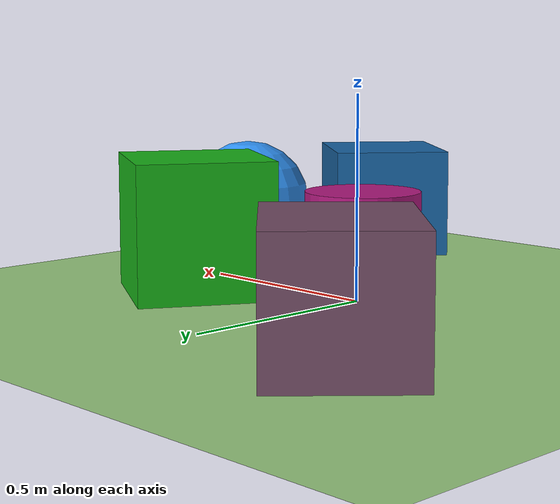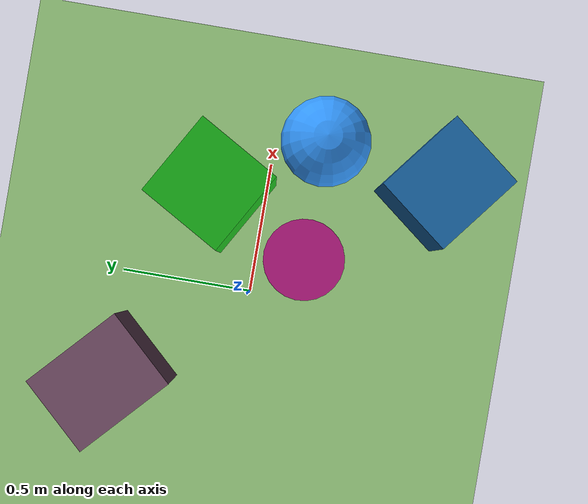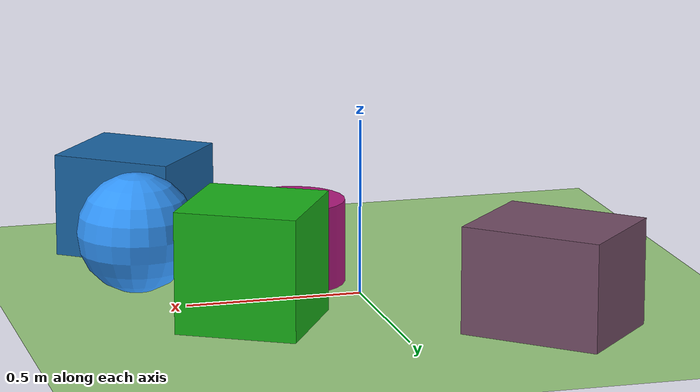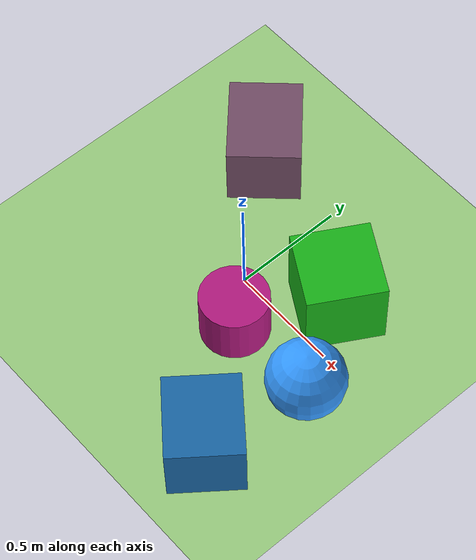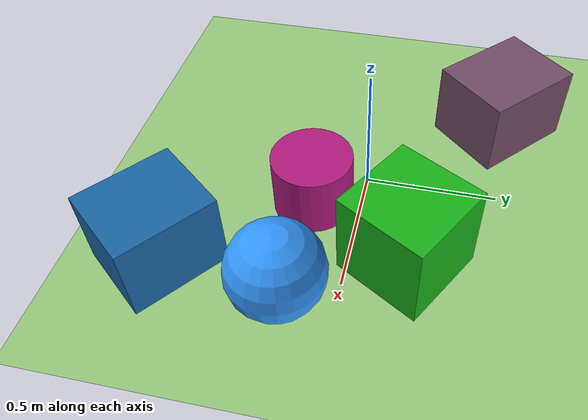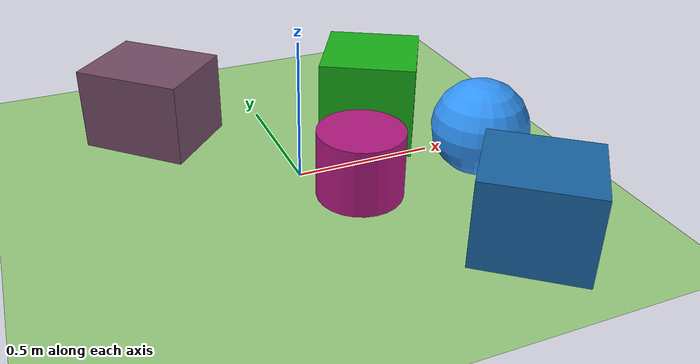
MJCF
<mujoco>
   <asset>
<texture type="skybox" builtin="gradient" rgb1="0.9 0.7 0.3" rgb2="0.7 0.3 0.8" width="256" height="256"/>
<texture name="gradient_0" builtin="gradient" rgb1="0.1 0.5 0.6" rgb2="0.8 0.1 0.2" width="200" height="200"/>
<texture name="flat_1" builtin="flat" rgb1="0.7 0.1 0.5" rgb2="0.7 0.1 0.5"  width="200" height="200"/>
<texture name="flat_2" builtin="flat" rgb1="0.1 0.7 0.1" rgb2="0.1 0.7 0.1"  width="200" height="200"/>
<texture name="flat_3" builtin="flat" rgb1="0.2 0.6 1.0" rgb2="0.2 0.6 1.0"  width="200" height="200"/>
<texture name="gradient_4" builtin="gradient" rgb1="0.2 0.3 1.0" rgb2="0.0 0.5 0.3" width="200" height="200"/><material name="gradient_0_mat" reflectance="0" texture="gradient_0" texuniform="true"/>
<material name="flat_1_mat" reflectance="0" texture="flat_1" texuniform="true"/>
<material name="flat_2_mat" reflectance="0" texture="flat_2" texuniform="true"/>
<material name="flat_3_mat" reflectance="0" texture="flat_3" texuniform="true"/>
<material name="gradient_4_mat" reflectance="0" texture="gradient_4" texuniform="true"/>
   </asset>

   <worldbody>
      <light diffuse=".9 .9 .9" pos="0 0 3" dir="0 0 -1"/>
     <geom type="plane" size="1 1 0.1" rgba="0.6 0.8 0.5 1"/>
<geom type="box" pos="-0.41 0.48 0.15" size="0.16 0.2 0.15" material="gradient_0_mat" euler="0 0 47" />
<geom type="cylinder" pos="0.15 -0.18 0.12" size="0.15 0.12 0.12" material="flat_1_mat" euler="0 0 57" />
<geom type="box" pos="0.36 0.2 0.17" size="0.17 0.17 0.17" material="flat_2_mat" euler="0 0 60" />
<geom type="sphere" pos="0.6 -0.19 0.17" size="0.17 0.17 0.17" material="flat_3_mat" euler="0 0 36" />
<geom type="box" pos="0.51 -0.65 0.15" size="0.16 0.18 0.15" material="gradient_4_mat" euler="0 0 52" /><camera euler="60 0 180" fovy="60" name="camera1" pos="-0.2 -1.5 1"></camera>   </worldbody>
</mujoco>
